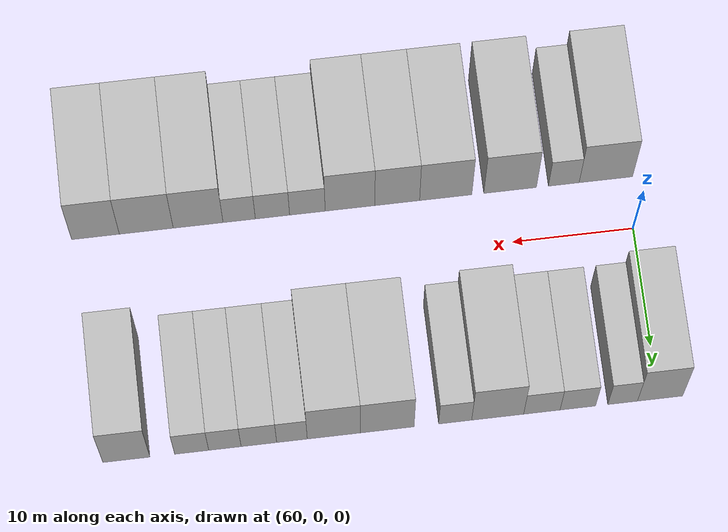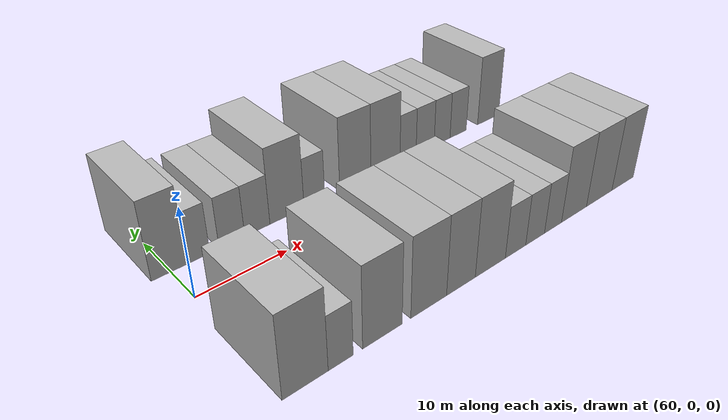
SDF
<sdf version="1.6">
 <world name="default">
  <model name="building_12">
   <static>1</static>
   <pose>59.8919 9.5000 0 0.000000 0.000000 1.570796</pose>
   <link name="link">
    <pose>0 0 4.50 0 0 0</pose>
    <collision name="collision"><geometry><box><size>10.0000 3.6989 9.0000</size></box></geometry></collision>
    <visual name="visual">
     <cast_shadows>0</cast_shadows>
     <geometry><box><size>10.0000 3.6989 9.0000</size></box></geometry>
     <material>
      <script>
       <uri>model://HANNAS_wall/materials/scripts</uri>
       <uri>model://HANNAS_wall/materials/textures</uri>
       <name>vrc/HANNAS_wall</name>
      </script>
     </material>
    </visual>
   </link>
  </model>
  <model name="building_13">
   <static>1</static>
   <pose>62.9533 9.5000 0 0.000000 0.000000 1.570796</pose>
   <link name="link">
    <pose>0 0 3.00 0 0 0</pose>
    <collision name="collision"><geometry><box><size>10.0000 2.4239 6.0000</size></box></geometry></collision>
    <visual name="visual">
     <cast_shadows>0</cast_shadows>
     <geometry><box><size>10.0000 2.4239 6.0000</size></box></geometry>
     <material>
      <script>
       <uri>model://HANNAS_wall/materials/scripts</uri>
       <uri>model://HANNAS_wall/materials/textures</uri>
       <name>vrc/HANNAS_wall</name>
      </script>
     </material>
    </visual>
   </link>
  </model>
  <model name="building_14">
   <static>1</static>
   <pose>66.6167 9.5000 0 0.000000 0.000000 1.570796</pose>
   <link name="link">
    <pose>0 0 3.00 0 0 0</pose>
    <collision name="collision"><geometry><box><size>10.0000 2.9030 6.0000</size></box></geometry></collision>
    <visual name="visual">
     <cast_shadows>0</cast_shadows>
     <geometry><box><size>10.0000 2.9030 6.0000</size></box></geometry>
     <material>
      <script>
       <uri>model://HANNAS_wall/materials/scripts</uri>
       <uri>model://HANNAS_wall/materials/textures</uri>
       <name>vrc/HANNAS_wall</name>
      </script>
     </material>
    </visual>
   </link>
  </model>
  <model name="building_15">
   <static>1</static>
   <pose>69.5515 9.5000 0 0.000000 0.000000 1.570796</pose>
   <link name="link">
    <pose>0 0 3.00 0 0 0</pose>
    <collision name="collision"><geometry><box><size>10.0000 2.9666 6.0000</size></box></geometry></collision>
    <visual name="visual">
     <cast_shadows>0</cast_shadows>
     <geometry><box><size>10.0000 2.9666 6.0000</size></box></geometry>
     <material>
      <script>
       <uri>model://HANNAS_wall/materials/scripts</uri>
       <uri>model://HANNAS_wall/materials/textures</uri>
       <name>vrc/HANNAS_wall</name>
      </script>
     </material>
    </visual>
   </link>
  </model>
  <model name="building_16">
   <static>1</static>
   <pose>73.1514 9.5000 0 0.000000 0.000000 1.570796</pose>
   <link name="link">
    <pose>0 0 4.50 0 0 0</pose>
    <collision name="collision"><geometry><box><size>10.0000 4.2332 9.0000</size></box></geometry></collision>
    <visual name="visual">
     <cast_shadows>0</cast_shadows>
     <geometry><box><size>10.0000 4.2332 9.0000</size></box></geometry>
     <material>
      <script>
       <uri>model://HANNAS_wall/materials/scripts</uri>
       <uri>model://HANNAS_wall/materials/textures</uri>
       <name>vrc/HANNAS_wall</name>
      </script>
     </material>
    </visual>
   </link>
  </model>
  <model name="building_17">
   <static>1</static>
   <pose>76.6122 9.5000 0 0.000000 0.000000 1.570796</pose>
   <link name="link">
    <pose>0 0 3.00 0 0 0</pose>
    <collision name="collision"><geometry><box><size>10.0000 2.6884 6.0000</size></box></geometry></collision>
    <visual name="visual">
     <cast_shadows>0</cast_shadows>
     <geometry><box><size>10.0000 2.6884 6.0000</size></box></geometry>
     <material>
      <script>
       <uri>model://HANNAS_wall/materials/scripts</uri>
       <uri>model://HANNAS_wall/materials/textures</uri>
       <name>vrc/HANNAS_wall</name>
      </script>
     </material>
    </visual>
   </link>
  </model>
  <model name="building_18">
   <static>1</static>
   <pose>82.1351 9.5000 0 0.000000 0.000000 1.570796</pose>
   <link name="link">
    <pose>0 0 4.50 0 0 0</pose>
    <collision name="collision"><geometry><box><size>10.0000 4.3573 9.0000</size></box></geometry></collision>
    <visual name="visual">
     <cast_shadows>0</cast_shadows>
     <geometry><box><size>10.0000 4.3573 9.0000</size></box></geometry>
     <material>
      <script>
       <uri>model://HANNAS_wall/materials/scripts</uri>
       <uri>model://HANNAS_wall/materials/textures</uri>
       <name>vrc/HANNAS_wall</name>
      </script>
     </material>
    </visual>
   </link>
  </model>
  <model name="building_19">
   <static>1</static>
   <pose>86.4716 9.5000 0 0.000000 0.000000 1.570796</pose>
   <link name="link">
    <pose>0 0 4.50 0 0 0</pose>
    <collision name="collision"><geometry><box><size>10.0000 4.3158 9.0000</size></box></geometry></collision>
    <visual name="visual">
     <cast_shadows>0</cast_shadows>
     <geometry><box><size>10.0000 4.3158 9.0000</size></box></geometry>
     <material>
      <script>
       <uri>model://HANNAS_wall/materials/scripts</uri>
       <uri>model://HANNAS_wall/materials/textures</uri>
       <name>vrc/HANNAS_wall</name>
      </script>
     </material>
    </visual>
   </link>
  </model>
  <model name="building_20">
   <static>1</static>
   <pose>89.8686 9.5000 0 0.000000 0.000000 1.570796</pose>
   <link name="link">
    <pose>0 0 3.00 0 0 0</pose>
    <collision name="collision"><geometry><box><size>10.0000 2.4782 6.0000</size></box></geometry></collision>
    <visual name="visual">
     <cast_shadows>0</cast_shadows>
     <geometry><box><size>10.0000 2.4782 6.0000</size></box></geometry>
     <material>
      <script>
       <uri>model://HANNAS_wall/materials/scripts</uri>
       <uri>model://HANNAS_wall/materials/textures</uri>
       <name>vrc/HANNAS_wall</name>
      </script>
     </material>
    </visual>
   </link>
  </model>
  <model name="building_21">
   <static>1</static>
   <pose>92.5483 9.5000 0 0.000000 0.000000 1.570796</pose>
   <link name="link">
    <pose>0 0 3.00 0 0 0</pose>
    <collision name="collision"><geometry><box><size>10.0000 2.8812 6.0000</size></box></geometry></collision>
    <visual name="visual">
     <cast_shadows>0</cast_shadows>
     <geometry><box><size>10.0000 2.8812 6.0000</size></box></geometry>
     <material>
      <script>
       <uri>model://HANNAS_wall/materials/scripts</uri>
       <uri>model://HANNAS_wall/materials/textures</uri>
       <name>vrc/HANNAS_wall</name>
      </script>
     </material>
    </visual>
   </link>
  </model>
  <model name="building_22">
   <static>1</static>
   <pose>95.3012 9.5000 0 0.000000 0.000000 1.570796</pose>
   <link name="link">
    <pose>0 0 3.00 0 0 0</pose>
    <collision name="collision"><geometry><box><size>10.0000 2.6247 6.0000</size></box></geometry></collision>
    <visual name="visual">
     <cast_shadows>0</cast_shadows>
     <geometry><box><size>10.0000 2.6247 6.0000</size></box></geometry>
     <material>
      <script>
       <uri>model://HANNAS_wall/materials/scripts</uri>
       <uri>model://HANNAS_wall/materials/textures</uri>
       <name>vrc/HANNAS_wall</name>
      </script>
     </material>
    </visual>
   </link>
  </model>
  <model name="building_23">
   <static>1</static>
   <pose>97.9914 9.5000 0 0.000000 0.000000 1.570796</pose>
   <link name="link">
    <pose>0 0 3.00 0 0 0</pose>
    <collision name="collision"><geometry><box><size>10.0000 2.7557 6.0000</size></box></geometry></collision>
    <visual name="visual">
     <cast_shadows>0</cast_shadows>
     <geometry><box><size>10.0000 2.7557 6.0000</size></box></geometry>
     <material>
      <script>
       <uri>model://HANNAS_wall/materials/scripts</uri>
       <uri>model://HANNAS_wall/materials/textures</uri>
       <name>vrc/HANNAS_wall</name>
      </script>
     </material>
    </visual>
   </link>
  </model>
  <model name="building_24">
   <static>1</static>
   <pose>103.2689 9.5000 0 0.000000 0.000000 1.570796</pose>
   <link name="link">
    <pose>0 0 4.50 0 0 0</pose>
    <collision name="collision"><geometry><box><size>10.0000 3.7992 9.0000</size></box></geometry></collision>
    <visual name="visual">
     <cast_shadows>0</cast_shadows>
     <geometry><box><size>10.0000 3.7992 9.0000</size></box></geometry>
     <material>
      <script>
       <uri>model://HANNAS_wall/materials/scripts</uri>
       <uri>model://HANNAS_wall/materials/textures</uri>
       <name>vrc/HANNAS_wall</name>
      </script>
     </material>
    </visual>
   </link>
  </model>
  <model name="building_63">
   <static>1</static>
   <pose>61.6279 -9.5000 0 0.000000 0.000000 1.570796</pose>
   <link name="link">
    <pose>0 0 4.50 0 0 0</pose>
    <collision name="collision"><geometry><box><size>10.0000 4.4680 9.0000</size></box></geometry></collision>
    <visual name="visual">
     <cast_shadows>0</cast_shadows>
     <geometry><box><size>10.0000 4.4680 9.0000</size></box></geometry>
     <material>
      <script>
       <uri>model://HANNAS_wall/materials/scripts</uri>
       <uri>model://HANNAS_wall/materials/textures</uri>
       <name>vrc/HANNAS_wall</name>
      </script>
     </material>
    </visual>
   </link>
  </model>
  <model name="building_64">
   <static>1</static>
   <pose>65.1466 -9.5000 0 0.000000 0.000000 1.570796</pose>
   <link name="link">
    <pose>0 0 3.00 0 0 0</pose>
    <collision name="collision"><geometry><box><size>10.0000 2.5694 6.0000</size></box></geometry></collision>
    <visual name="visual">
     <cast_shadows>0</cast_shadows>
     <geometry><box><size>10.0000 2.5694 6.0000</size></box></geometry>
     <material>
      <script>
       <uri>model://HANNAS_wall/materials/scripts</uri>
       <uri>model://HANNAS_wall/materials/textures</uri>
       <name>vrc/HANNAS_wall</name>
      </script>
     </material>
    </visual>
   </link>
  </model>
  <model name="building_65">
   <static>1</static>
   <pose>69.6261 -9.5000 0 0.000000 0.000000 1.570796</pose>
   <link name="link">
    <pose>0 0 4.50 0 0 0</pose>
    <collision name="collision"><geometry><box><size>10.0000 4.3897 9.0000</size></box></geometry></collision>
    <visual name="visual">
     <cast_shadows>0</cast_shadows>
     <geometry><box><size>10.0000 4.3897 9.0000</size></box></geometry>
     <material>
      <script>
       <uri>model://HANNAS_wall/materials/scripts</uri>
       <uri>model://HANNAS_wall/materials/textures</uri>
       <name>vrc/HANNAS_wall</name>
      </script>
     </material>
    </visual>
   </link>
  </model>
  <model name="building_66">
   <static>1</static>
   <pose>74.9949 -9.5000 0 0.000000 0.000000 1.570796</pose>
   <link name="link">
    <pose>0 0 4.50 0 0 0</pose>
    <collision name="collision"><geometry><box><size>10.0000 4.3479 9.0000</size></box></geometry></collision>
    <visual name="visual">
     <cast_shadows>0</cast_shadows>
     <geometry><box><size>10.0000 4.3479 9.0000</size></box></geometry>
     <material>
      <script>
       <uri>model://HANNAS_wall/materials/scripts</uri>
       <uri>model://HANNAS_wall/materials/textures</uri>
       <name>vrc/HANNAS_wall</name>
      </script>
     </material>
    </visual>
   </link>
  </model>
  <model name="building_67">
   <static>1</static>
   <pose>79.0279 -9.5000 0 0.000000 0.000000 1.570796</pose>
   <link name="link">
    <pose>0 0 4.50 0 0 0</pose>
    <collision name="collision"><geometry><box><size>10.0000 3.7179 9.0000</size></box></geometry></collision>
    <visual name="visual">
     <cast_shadows>0</cast_shadows>
     <geometry><box><size>10.0000 3.7179 9.0000</size></box></geometry>
     <material>
      <script>
       <uri>model://HANNAS_wall/materials/scripts</uri>
       <uri>model://HANNAS_wall/materials/textures</uri>
       <name>vrc/HANNAS_wall</name>
      </script>
     </material>
    </visual>
   </link>
  </model>
  <model name="building_68">
   <static>1</static>
   <pose>82.9520 -9.5000 0 0.000000 0.000000 1.570796</pose>
   <link name="link">
    <pose>0 0 4.50 0 0 0</pose>
    <collision name="collision"><geometry><box><size>10.0000 4.1304 9.0000</size></box></geometry></collision>
    <visual name="visual">
     <cast_shadows>0</cast_shadows>
     <geometry><box><size>10.0000 4.1304 9.0000</size></box></geometry>
     <material>
      <script>
       <uri>model://HANNAS_wall/materials/scripts</uri>
       <uri>model://HANNAS_wall/materials/textures</uri>
       <name>vrc/HANNAS_wall</name>
      </script>
     </material>
    </visual>
   </link>
  </model>
  <model name="building_69">
   <static>1</static>
   <pose>86.4962 -9.5000 0 0.000000 0.000000 1.570796</pose>
   <link name="link">
    <pose>0 0 3.00 0 0 0</pose>
    <collision name="collision"><geometry><box><size>10.0000 2.9579 6.0000</size></box></geometry></collision>
    <visual name="visual">
     <cast_shadows>0</cast_shadows>
     <geometry><box><size>10.0000 2.9579 6.0000</size></box></geometry>
     <material>
      <script>
       <uri>model://HANNAS_wall/materials/scripts</uri>
       <uri>model://HANNAS_wall/materials/textures</uri>
       <name>vrc/HANNAS_wall</name>
      </script>
     </material>
    </visual>
   </link>
  </model>
  <model name="building_70">
   <static>1</static>
   <pose>89.3954 -9.5000 0 0.000000 0.000000 1.570796</pose>
   <link name="link">
    <pose>0 0 3.00 0 0 0</pose>
    <collision name="collision"><geometry><box><size>10.0000 2.8405 6.0000</size></box></geometry></collision>
    <visual name="visual">
     <cast_shadows>0</cast_shadows>
     <geometry><box><size>10.0000 2.8405 6.0000</size></box></geometry>
     <material>
      <script>
       <uri>model://HANNAS_wall/materials/scripts</uri>
       <uri>model://HANNAS_wall/materials/textures</uri>
       <name>vrc/HANNAS_wall</name>
      </script>
     </material>
    </visual>
   </link>
  </model>
  <model name="building_71">
   <static>1</static>
   <pose>92.1543 -9.5000 0 0.000000 0.000000 1.570796</pose>
   <link name="link">
    <pose>0 0 3.00 0 0 0</pose>
    <collision name="collision"><geometry><box><size>10.0000 2.6773 6.0000</size></box></geometry></collision>
    <visual name="visual">
     <cast_shadows>0</cast_shadows>
     <geometry><box><size>10.0000 2.6773 6.0000</size></box></geometry>
     <material>
      <script>
       <uri>model://HANNAS_wall/materials/scripts</uri>
       <uri>model://HANNAS_wall/materials/textures</uri>
       <name>vrc/HANNAS_wall</name>
      </script>
     </material>
    </visual>
   </link>
  </model>
  <model name="building_72">
   <static>1</static>
   <pose>95.5562 -9.5000 0 0.000000 0.000000 1.570796</pose>
   <link name="link">
    <pose>0 0 4.50 0 0 0</pose>
    <collision name="collision"><geometry><box><size>10.0000 4.1266 9.0000</size></box></geometry></collision>
    <visual name="visual">
     <cast_shadows>0</cast_shadows>
     <geometry><box><size>10.0000 4.1266 9.0000</size></box></geometry>
     <material>
      <script>
       <uri>model://HANNAS_wall/materials/scripts</uri>
       <uri>model://HANNAS_wall/materials/textures</uri>
       <name>vrc/HANNAS_wall</name>
      </script>
     </material>
    </visual>
   </link>
  </model>
  <model name="building_73">
   <static>1</static>
   <pose>99.8492 -9.5000 0 0.000000 0.000000 1.570796</pose>
   <link name="link">
    <pose>0 0 4.50 0 0 0</pose>
    <collision name="collision"><geometry><box><size>10.0000 4.4594 9.0000</size></box></geometry></collision>
    <visual name="visual">
     <cast_shadows>0</cast_shadows>
     <geometry><box><size>10.0000 4.4594 9.0000</size></box></geometry>
     <material>
      <script>
       <uri>model://HANNAS_wall/materials/scripts</uri>
       <uri>model://HANNAS_wall/materials/textures</uri>
       <name>vrc/HANNAS_wall</name>
      </script>
     </material>
    </visual>
   </link>
  </model>
  <model name="building_74">
   <static>1</static>
   <pose>104.0500 -9.5000 0 0.000000 0.000000 1.570796</pose>
   <link name="link">
    <pose>0 0 4.50 0 0 0</pose>
    <collision name="collision"><geometry><box><size>10.0000 3.9421 9.0000</size></box></geometry></collision>
    <visual name="visual">
     <cast_shadows>0</cast_shadows>
     <geometry><box><size>10.0000 3.9421 9.0000</size></box></geometry>
     <material>
      <script>
       <uri>model://HANNAS_wall/materials/scripts</uri>
       <uri>model://HANNAS_wall/materials/textures</uri>
       <name>vrc/HANNAS_wall</name>
      </script>
     </material>
    </visual>
   </link>
  </model>
 </world>
</sdf>
